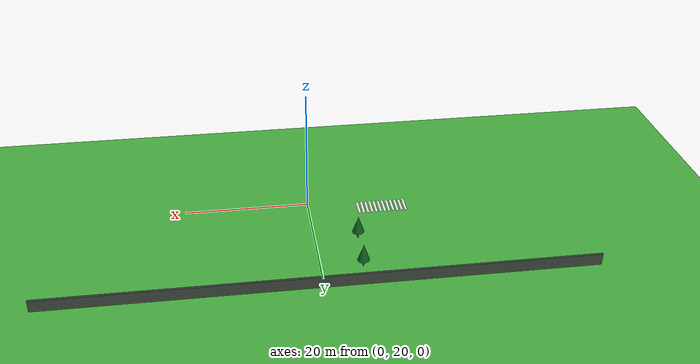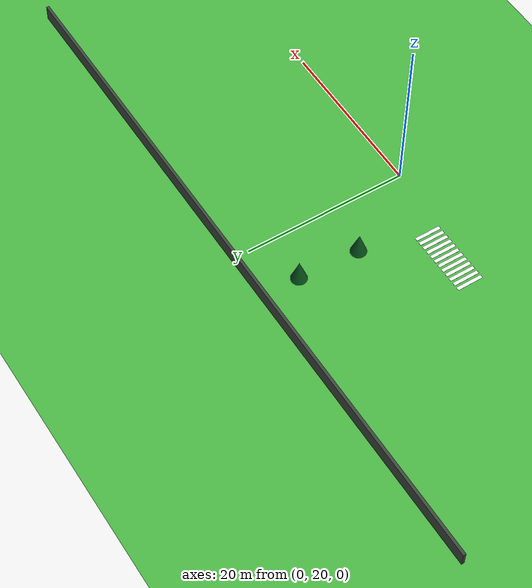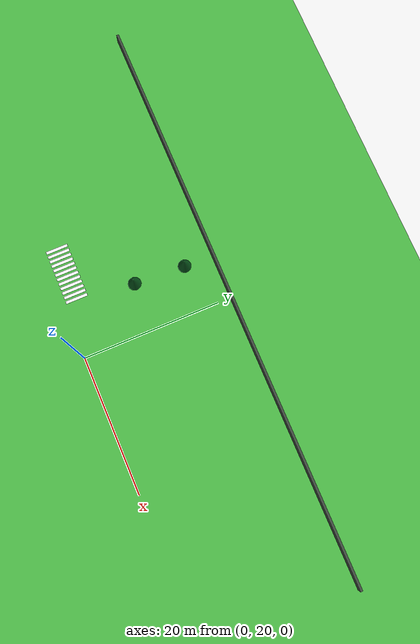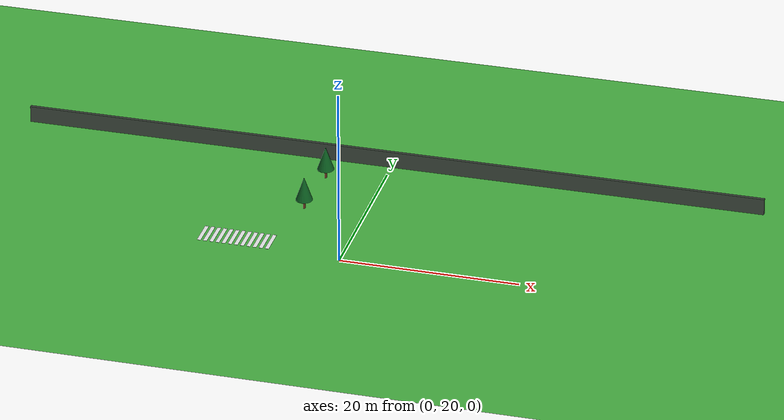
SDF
<sdf version="1.10">
 <world name="city_second">
  <model name="ground_plane">
   <static>true</static>
   <link name="link">
    <collision name="collision">
     <geometry><plane><normal>0 0 1</normal><size>300 300</size></plane></geometry>
    </collision>
    <visual name="visual">
     <geometry><plane><normal>0 0 1</normal><size>300 300</size></plane></geometry>
     <material>
      <ambient>0.280000001 0.689999998 0.25999999 1</ambient>
      <diffuse>0.280000001 0.689999998 0.25999999 1</diffuse>
      <specular>0.0299999993 0.0299999993 0.0299999993 1</specular>
     </material>
    </visual>
    <inertial>
     <mass>1</mass>
     <inertia><ixx>1</ixx><ixy>0</ixy><ixz>0</ixz><iyy>1</iyy><iyz>0</iyz><izz>1</izz></inertia>
    </inertial>
   </link>
  </model>
  <model name="fence_north">
   <static>true</static>
   <pose>0 42 0.94999999999999996 0 0 0</pose>
   <link name="link">
    <collision name="collision">
     <geometry><box><size>84.5 0.34999999999999998 1.8999999999999999</size></box></geometry>
    </collision>
    <visual name="visual">
     <geometry><box><size>84.5 0.34999999999999998 1.8999999999999999</size></box></geometry>
     <material>
      <ambient>0.230000004 0.270000011 0.230000004 1</ambient>
      <diffuse>0.230000004 0.270000011 0.230000004 1</diffuse>
      <specular>0.0299999993 0.0299999993 0.0299999993 1</specular>
     </material>
    </visual>
    <inertial>
     <mass>1</mass>
     <inertia><ixx>1</ixx><ixy>0</ixy><ixz>0</ixz><iyy>1</iyy><iyz>0</iyz><izz>1</izz></inertia>
    </inertial>
   </link>
  </model>
  <model name="crosswalk_h_1_1_south_7_6">
   <static>true</static>
   <pose>-12.1145 22.0322 0.017000000000000001 0 0 0</pose>
   <link name="stripe_1">
    <collision name="collision">
     <geometry><box><size>0.41999999999999998 3.2000000000000002 0.01</size></box></geometry>
    </collision>
    <visual name="visual">
     <geometry><box><size>0.41999999999999998 3.2000000000000002 0.01</size></box></geometry>
     <material>
      <ambient>0.920000017 0.920000017 0.930000007 1</ambient>
      <diffuse>0.920000017 0.920000017 0.930000007 1</diffuse>
      <specular>0.0299999993 0.0299999993 0.0299999993 1</specular>
     </material>
    </visual>
    <pose>-3.8500000000000001 0 0 0 0 0</pose>
    <inertial>
     <mass>1</mass>
     <inertia><ixx>1</ixx><ixy>0</ixy><ixz>0</ixz><iyy>1</iyy><iyz>0</iyz><izz>1</izz></inertia>
    </inertial>
   </link>
   <link name="stripe_2">
    <collision name="collision">
     <geometry><box><size>0.41999999999999998 3.2000000000000002 0.01</size></box></geometry>
    </collision>
    <visual name="visual">
     <geometry><box><size>0.41999999999999998 3.2000000000000002 0.01</size></box></geometry>
     <material>
      <ambient>0.920000017 0.920000017 0.930000007 1</ambient>
      <diffuse>0.920000017 0.920000017 0.930000007 1</diffuse>
      <specular>0.0299999993 0.0299999993 0.0299999993 1</specular>
     </material>
    </visual>
    <pose>-3.1500000000000004 0 0 0 0 0</pose>
    <inertial>
     <mass>1</mass>
     <inertia><ixx>1</ixx><ixy>0</ixy><ixz>0</ixz><iyy>1</iyy><iyz>0</iyz><izz>1</izz></inertia>
    </inertial>
   </link>
   <link name="stripe_3">
    <collision name="collision">
     <geometry><box><size>0.41999999999999998 3.2000000000000002 0.01</size></box></geometry>
    </collision>
    <visual name="visual">
     <geometry><box><size>0.41999999999999998 3.2000000000000002 0.01</size></box></geometry>
     <material>
      <ambient>0.920000017 0.920000017 0.930000007 1</ambient>
      <diffuse>0.920000017 0.920000017 0.930000007 1</diffuse>
      <specular>0.0299999993 0.0299999993 0.0299999993 1</specular>
     </material>
    </visual>
    <pose>-2.4499999999999993 0 0 0 0 0</pose>
    <inertial>
     <mass>1</mass>
     <inertia><ixx>1</ixx><ixy>0</ixy><ixz>0</ixz><iyy>1</iyy><iyz>0</iyz><izz>1</izz></inertia>
    </inertial>
   </link>
   <link name="stripe_4">
    <collision name="collision">
     <geometry><box><size>0.41999999999999998 3.2000000000000002 0.01</size></box></geometry>
    </collision>
    <visual name="visual">
     <geometry><box><size>0.41999999999999998 3.2000000000000002 0.01</size></box></geometry>
     <material>
      <ambient>0.920000017 0.920000017 0.930000007 1</ambient>
      <diffuse>0.920000017 0.920000017 0.930000007 1</diffuse>
      <specular>0.0299999993 0.0299999993 0.0299999993 1</specular>
     </material>
    </visual>
    <pose>-1.75 0 0 0 0 0</pose>
    <inertial>
     <mass>1</mass>
     <inertia><ixx>1</ixx><ixy>0</ixy><ixz>0</ixz><iyy>1</iyy><iyz>0</iyz><izz>1</izz></inertia>
    </inertial>
   </link>
   <link name="stripe_5">
    <collision name="collision">
     <geometry><box><size>0.41999999999999998 3.2000000000000002 0.01</size></box></geometry>
    </collision>
    <visual name="visual">
     <geometry><box><size>0.41999999999999998 3.2000000000000002 0.01</size></box></geometry>
     <material>
      <ambient>0.920000017 0.920000017 0.930000007 1</ambient>
      <diffuse>0.920000017 0.920000017 0.930000007 1</diffuse>
      <specular>0.0299999993 0.0299999993 0.0299999993 1</specular>
     </material>
    </visual>
    <pose>-1.0500000000000007 0 0 0 0 0</pose>
    <inertial>
     <mass>1</mass>
     <inertia><ixx>1</ixx><ixy>0</ixy><ixz>0</ixz><iyy>1</iyy><iyz>0</iyz><izz>1</izz></inertia>
    </inertial>
   </link>
   <link name="stripe_6">
    <collision name="collision">
     <geometry><box><size>0.41999999999999998 3.2000000000000002 0.01</size></box></geometry>
    </collision>
    <visual name="visual">
     <geometry><box><size>0.41999999999999998 3.2000000000000002 0.01</size></box></geometry>
     <material>
      <ambient>0.920000017 0.920000017 0.930000007 1</ambient>
      <diffuse>0.920000017 0.920000017 0.930000007 1</diffuse>
      <specular>0.0299999993 0.0299999993 0.0299999993 1</specular>
     </material>
    </visual>
    <pose>-0.34999999999999964 0 0 0 0 0</pose>
    <inertial>
     <mass>1</mass>
     <inertia><ixx>1</ixx><ixy>0</ixy><ixz>0</ixz><iyy>1</iyy><iyz>0</iyz><izz>1</izz></inertia>
    </inertial>
   </link>
   <link name="stripe_7">
    <collision name="collision">
     <geometry><box><size>0.41999999999999998 3.2000000000000002 0.01</size></box></geometry>
    </collision>
    <visual name="visual">
     <geometry><box><size>0.41999999999999998 3.2000000000000002 0.01</size></box></geometry>
     <material>
      <ambient>0.920000017 0.920000017 0.930000007 1</ambient>
      <diffuse>0.920000017 0.920000017 0.930000007 1</diffuse>
      <specular>0.0299999993 0.0299999993 0.0299999993 1</specular>
     </material>
    </visual>
    <pose>0.34999999999999964 0 0 0 0 0</pose>
    <inertial>
     <mass>1</mass>
     <inertia><ixx>1</ixx><ixy>0</ixy><ixz>0</ixz><iyy>1</iyy><iyz>0</iyz><izz>1</izz></inertia>
    </inertial>
   </link>
   <link name="stripe_8">
    <collision name="collision">
     <geometry><box><size>0.41999999999999998 3.2000000000000002 0.01</size></box></geometry>
    </collision>
    <visual name="visual">
     <geometry><box><size>0.41999999999999998 3.2000000000000002 0.01</size></box></geometry>
     <material>
      <ambient>0.920000017 0.920000017 0.930000007 1</ambient>
      <diffuse>0.920000017 0.920000017 0.930000007 1</diffuse>
      <specular>0.0299999993 0.0299999993 0.0299999993 1</specular>
     </material>
    </visual>
    <pose>1.0500000000000007 0 0 0 0 0</pose>
    <inertial>
     <mass>1</mass>
     <inertia><ixx>1</ixx><ixy>0</ixy><ixz>0</ixz><iyy>1</iyy><iyz>0</iyz><izz>1</izz></inertia>
    </inertial>
   </link>
   <link name="stripe_9">
    <collision name="collision">
     <geometry><box><size>0.41999999999999998 3.2000000000000002 0.01</size></box></geometry>
    </collision>
    <visual name="visual">
     <geometry><box><size>0.41999999999999998 3.2000000000000002 0.01</size></box></geometry>
     <material>
      <ambient>0.920000017 0.920000017 0.930000007 1</ambient>
      <diffuse>0.920000017 0.920000017 0.930000007 1</diffuse>
      <specular>0.0299999993 0.0299999993 0.0299999993 1</specular>
     </material>
    </visual>
    <pose>1.75 0 0 0 0 0</pose>
    <inertial>
     <mass>1</mass>
     <inertia><ixx>1</ixx><ixy>0</ixy><ixz>0</ixz><iyy>1</iyy><iyz>0</iyz><izz>1</izz></inertia>
    </inertial>
   </link>
   <link name="stripe_10">
    <collision name="collision">
     <geometry><box><size>0.41999999999999998 3.2000000000000002 0.01</size></box></geometry>
    </collision>
    <visual name="visual">
     <geometry><box><size>0.41999999999999998 3.2000000000000002 0.01</size></box></geometry>
     <material>
      <ambient>0.920000017 0.920000017 0.930000007 1</ambient>
      <diffuse>0.920000017 0.920000017 0.930000007 1</diffuse>
      <specular>0.0299999993 0.0299999993 0.0299999993 1</specular>
     </material>
    </visual>
    <pose>2.4499999999999993 0 0 0 0 0</pose>
    <inertial>
     <mass>1</mass>
     <inertia><ixx>1</ixx><ixy>0</ixy><ixz>0</ixz><iyy>1</iyy><iyz>0</iyz><izz>1</izz></inertia>
    </inertial>
   </link>
   <link name="stripe_11">
    <collision name="collision">
     <geometry><box><size>0.41999999999999998 3.2000000000000002 0.01</size></box></geometry>
    </collision>
    <visual name="visual">
     <geometry><box><size>0.41999999999999998 3.2000000000000002 0.01</size></box></geometry>
     <material>
      <ambient>0.920000017 0.920000017 0.930000007 1</ambient>
      <diffuse>0.920000017 0.920000017 0.930000007 1</diffuse>
      <specular>0.0299999993 0.0299999993 0.0299999993 1</specular>
     </material>
    </visual>
    <pose>3.1500000000000004 0 0 0 0 0</pose>
    <inertial>
     <mass>1</mass>
     <inertia><ixx>1</ixx><ixy>0</ixy><ixz>0</ixz><iyy>1</iyy><iyz>0</iyz><izz>1</izz></inertia>
    </inertial>
   </link>
   <link name="stripe_12">
    <collision name="collision">
     <geometry><box><size>0.41999999999999998 3.2000000000000002 0.01</size></box></geometry>
    </collision>
    <visual name="visual">
     <geometry><box><size>0.41999999999999998 3.2000000000000002 0.01</size></box></geometry>
     <material>
      <ambient>0.920000017 0.920000017 0.930000007 1</ambient>
      <diffuse>0.920000017 0.920000017 0.930000007 1</diffuse>
      <specular>0.0299999993 0.0299999993 0.0299999993 1</specular>
     </material>
    </visual>
    <pose>3.8499999999999996 0 0 0 0 0</pose>
    <inertial>
     <mass>1</mass>
     <inertia><ixx>1</ixx><ixy>0</ixy><ixz>0</ixz><iyy>1</iyy><iyz>0</iyz><izz>1</izz></inertia>
    </inertial>
   </link>
  </model>
  <model name="Pine Tree_2">
   <static>true</static>
   <pose>-6.4425299999999996 37.668399999999998 0 0 0 0</pose>
   <link name="link">
    <collision name="footprint">
     <pose>0 0 0.050000000000000003 0 0 0</pose>
     <geometry>
      <cylinder><radius>0.65000000000000002</radius><length>0.10000000000000001</length></cylinder>
     </geometry>
    </collision>
    <visual name="trunk">
     <pose>0 0 0.90000000000000002 0 0 0</pose>
     <geometry><cylinder><radius>0.13</radius><length>1.8</length></cylinder></geometry>
     <material>
      <ambient>0.360000014 0.200000003 0.100000001 1</ambient>
      <diffuse>0.360000014 0.200000003 0.100000001 1</diffuse>
      <specular>0.119999997 0.119999997 0.119999997 1</specular>
      <emissive>0 0 0 1</emissive>
     </material>
    </visual>
    <visual name="crown">
     <pose>0 0 2.4500000000000002 0 0 0</pose>
     <geometry><cone><radius>0.94999999999999996</radius><length>2.7000000000000002</length></cone></geometry>
     <material>
      <ambient>0.0299999993 0.340000004 0.109999999 1</ambient>
      <diffuse>0.0299999993 0.340000004 0.109999999 1</diffuse>
      <specular>0.119999997 0.119999997 0.119999997 1</specular>
      <emissive>0 0 0 1</emissive>
     </material>
    </visual>
    <inertial>
     <mass>1</mass>
     <inertia><ixx>1</ixx><ixy>0</ixy><ixz>0</ixz><iyy>1</iyy><iyz>0</iyz><izz>1</izz></inertia>
    </inertial>
   </link>
  </model>
  <model name="Pine Tree_4">
   <static>true</static>
   <pose>-6.8345700000000003 30.302499999999998 0 0 0 0</pose>
   <link name="link">
    <collision name="footprint">
     <pose>0 0 0.050000000000000003 0 0 0</pose>
     <geometry>
      <cylinder><radius>0.65000000000000002</radius><length>0.10000000000000001</length></cylinder>
     </geometry>
    </collision>
    <visual name="trunk">
     <pose>0 0 0.90000000000000002 0 0 0</pose>
     <geometry><cylinder><radius>0.13</radius><length>1.8</length></cylinder></geometry>
     <material>
      <ambient>0.360000014 0.200000003 0.100000001 1</ambient>
      <diffuse>0.360000014 0.200000003 0.100000001 1</diffuse>
      <specular>0.119999997 0.119999997 0.119999997 1</specular>
      <emissive>0 0 0 1</emissive>
     </material>
    </visual>
    <visual name="crown">
     <pose>0 0 2.4500000000000002 0 0 0</pose>
     <geometry><cone><radius>0.94999999999999996</radius><length>2.7000000000000002</length></cone></geometry>
     <material>
      <ambient>0.0299999993 0.340000004 0.109999999 1</ambient>
      <diffuse>0.0299999993 0.340000004 0.109999999 1</diffuse>
      <specular>0.119999997 0.119999997 0.119999997 1</specular>
      <emissive>0 0 0 1</emissive>
     </material>
    </visual>
    <inertial>
     <mass>1</mass>
     <inertia><ixx>1</ixx><ixy>0</ixy><ixz>0</ixz><iyy>1</iyy><iyz>0</iyz><izz>1</izz></inertia>
    </inertial>
   </link>
  </model>
 </world>
</sdf>
